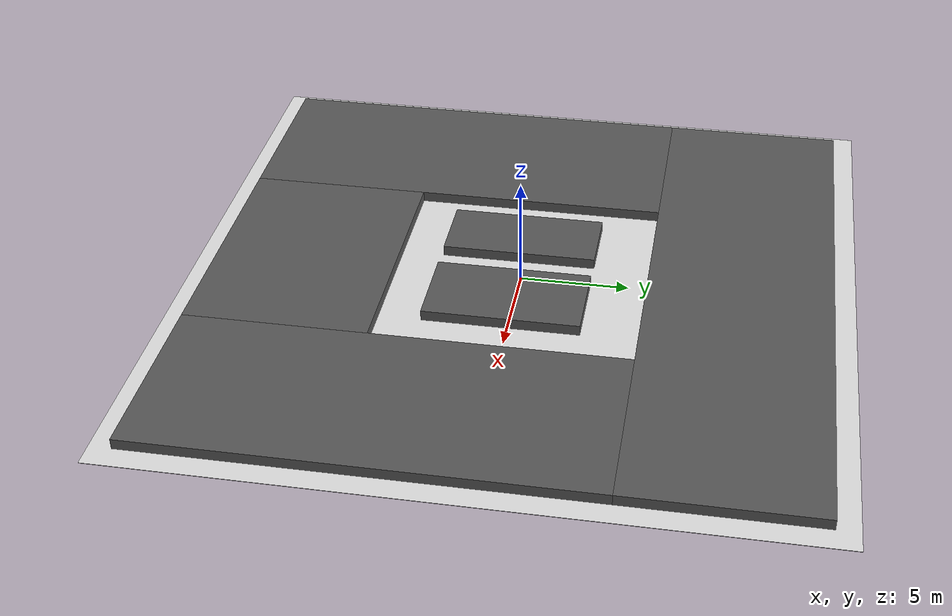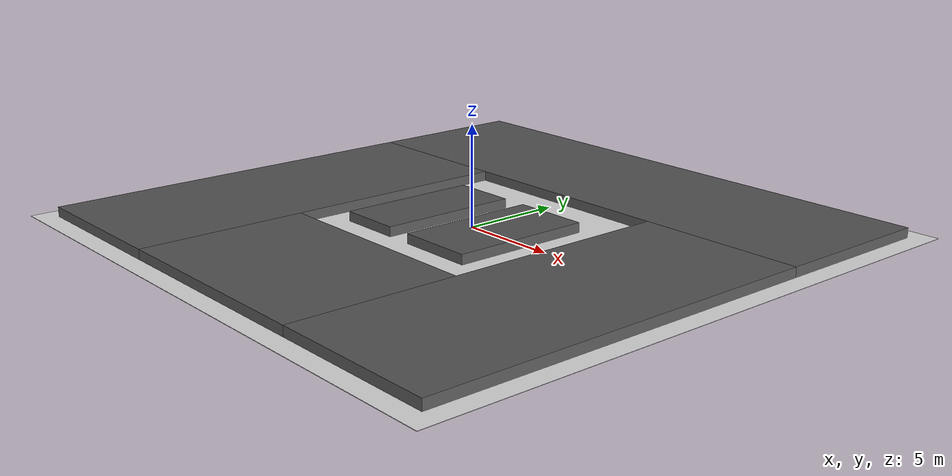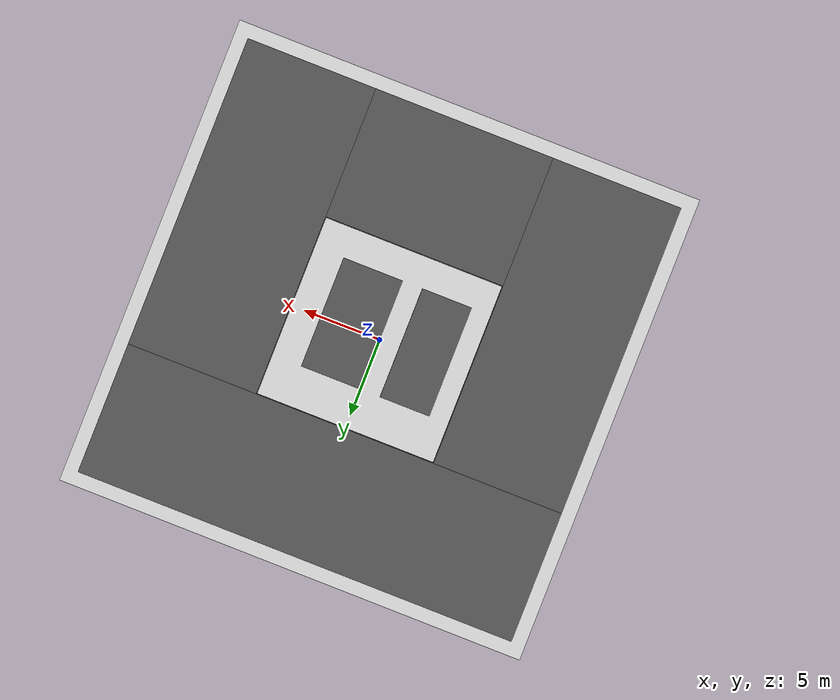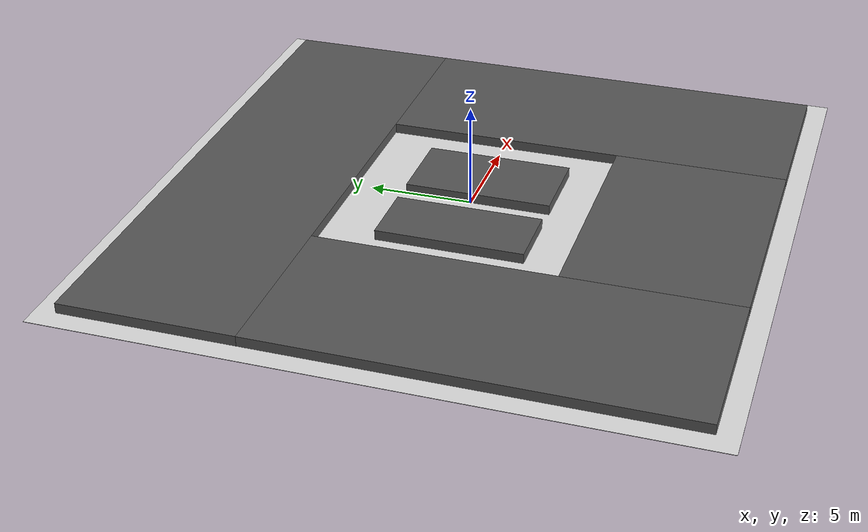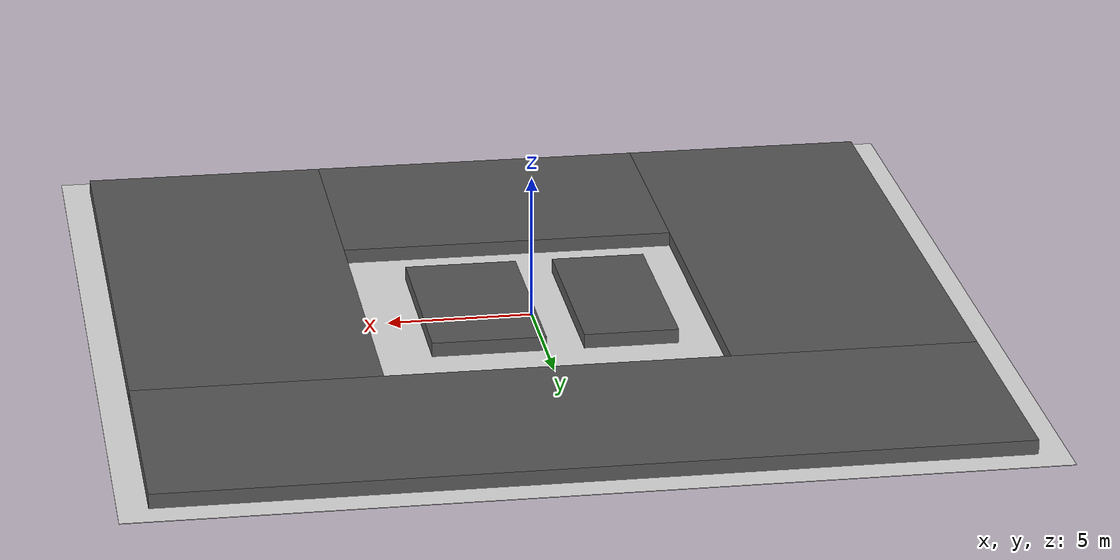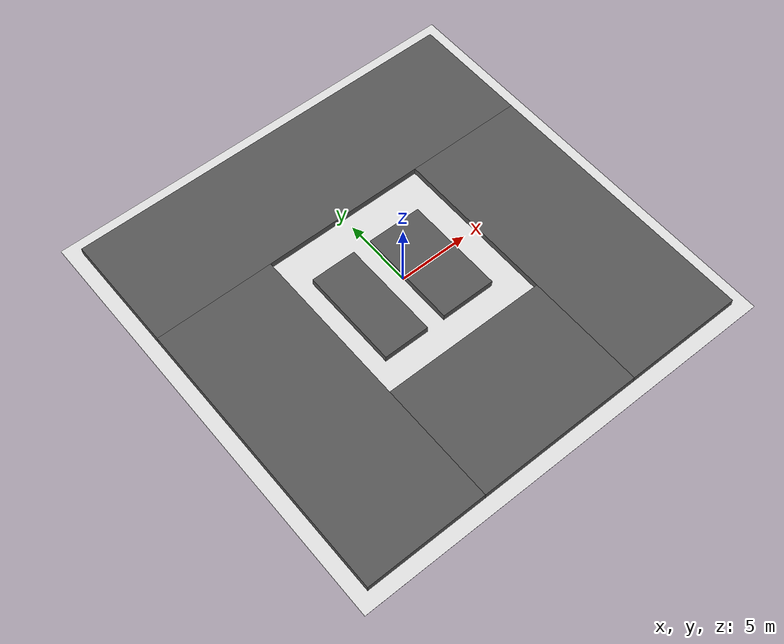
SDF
<?xml version="1.0"?>
<sdf version="1.9">
  <world name="test_map_l1">
    <plugin filename="ignition-gazebo-physics-system" name="ignition::gazebo::systems::Physics"/>
    <plugin filename="ignition-gazebo-user-commands-system" name="ignition::gazebo::systems::UserCommands"/>
    <plugin filename="ignition-gazebo-scene-broadcaster-system" name="ignition::gazebo::systems::SceneBroadcaster"/>
    <plugin filename="ignition-gazebo-sensors-system" name="ignition::gazebo::systems::Sensors">
      <render_engine>ogre2</render_engine>
    </plugin>
    <light name="sun" type="directional">
      <cast_shadows>true</cast_shadows>
      <pose>0 0 10 0 0 0</pose>
      <diffuse>0.8 0.8 0.8 1</diffuse>
      <specular>0.2 0.2 0.2 1</specular>
      <direction>-0.5 0.1 -0.9</direction>
    </light>
    <model name="ground_plane">
      <static>true</static>
      <link name="link">
        <collision name="collision">
          <geometry>
            <box><size>30.600000 30.600000 0.02</size></box>
          </geometry>
        </collision>
        <visual name="visual">
          <geometry>
            <box><size>30.600000 30.600000 0.02</size></box>
          </geometry>
          <material><ambient>0.9 0.9 0.9 1</ambient><diffuse>0.9 0.9 0.9 1</diffuse></material>
        </visual>
      </link>
    </model>
    <model name="rl_explore_obstacles">
      <static>true</static>
      <link name="wall_0000">
        <pose>0.000000 10.075000 0.250000 0 0 0</pose>
        <collision name="collision">
          <geometry>
            <box><size>28.600000 8.450000 0.500000</size></box>
          </geometry>
        </collision>
        <visual name="visual">
          <geometry>
            <box><size>28.600000 8.450000 0.500000</size></box>
          </geometry>
          <material><ambient>0.25 0.25 0.25 1</ambient><diffuse>0.35 0.35 0.35 1</diffuse></material>
        </visual>
      </link>
      <link name="wall_0001">
        <pose>-10.075000 -4.225000 0.250000 0 0 0</pose>
        <collision name="collision">
          <geometry>
            <box><size>8.450000 20.150000 0.500000</size></box>
          </geometry>
        </collision>
        <visual name="visual">
          <geometry>
            <box><size>8.450000 20.150000 0.500000</size></box>
          </geometry>
          <material><ambient>0.25 0.25 0.25 1</ambient><diffuse>0.35 0.35 0.35 1</diffuse></material>
        </visual>
      </link>
      <link name="wall_0002">
        <pose>10.075000 -4.225000 0.250000 0 0 0</pose>
        <collision name="collision">
          <geometry>
            <box><size>8.450000 20.150000 0.500000</size></box>
          </geometry>
        </collision>
        <visual name="visual">
          <geometry>
            <box><size>8.450000 20.150000 0.500000</size></box>
          </geometry>
          <material><ambient>0.25 0.25 0.25 1</ambient><diffuse>0.35 0.35 0.35 1</diffuse></material>
        </visual>
      </link>
      <link name="wall_0003">
        <pose>-2.925000 -0.325000 0.250000 0 0 0</pose>
        <collision name="collision">
          <geometry>
            <box><size>3.250000 7.150000 0.500000</size></box>
          </geometry>
        </collision>
        <visual name="visual">
          <geometry>
            <box><size>3.250000 7.150000 0.500000</size></box>
          </geometry>
          <material><ambient>0.25 0.25 0.25 1</ambient><diffuse>0.35 0.35 0.35 1</diffuse></material>
        </visual>
      </link>
      <link name="wall_0004">
        <pose>1.950000 -0.325000 0.250000 0 0 0</pose>
        <collision name="collision">
          <geometry>
            <box><size>3.900000 7.150000 0.500000</size></box>
          </geometry>
        </collision>
        <visual name="visual">
          <geometry>
            <box><size>3.900000 7.150000 0.500000</size></box>
          </geometry>
          <material><ambient>0.25 0.25 0.25 1</ambient><diffuse>0.35 0.35 0.35 1</diffuse></material>
        </visual>
      </link>
      <link name="wall_0005">
        <pose>0.000000 -10.075000 0.250000 0 0 0</pose>
        <collision name="collision">
          <geometry>
            <box><size>11.700000 8.450000 0.500000</size></box>
          </geometry>
        </collision>
        <visual name="visual">
          <geometry>
            <box><size>11.700000 8.450000 0.500000</size></box>
          </geometry>
          <material><ambient>0.25 0.25 0.25 1</ambient><diffuse>0.35 0.35 0.35 1</diffuse></material>
        </visual>
      </link>
    </model>
  </world>
</sdf>
